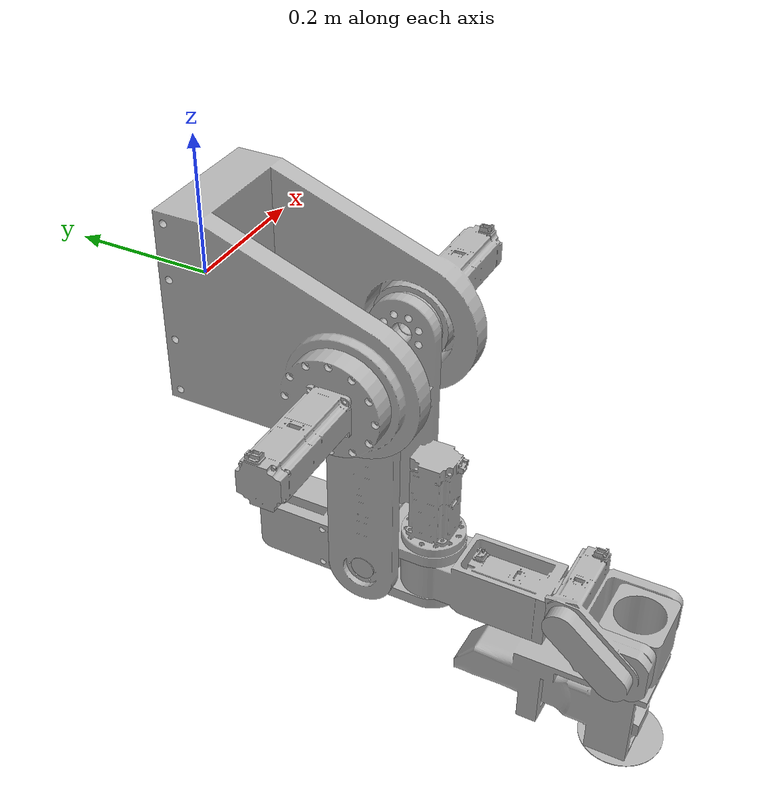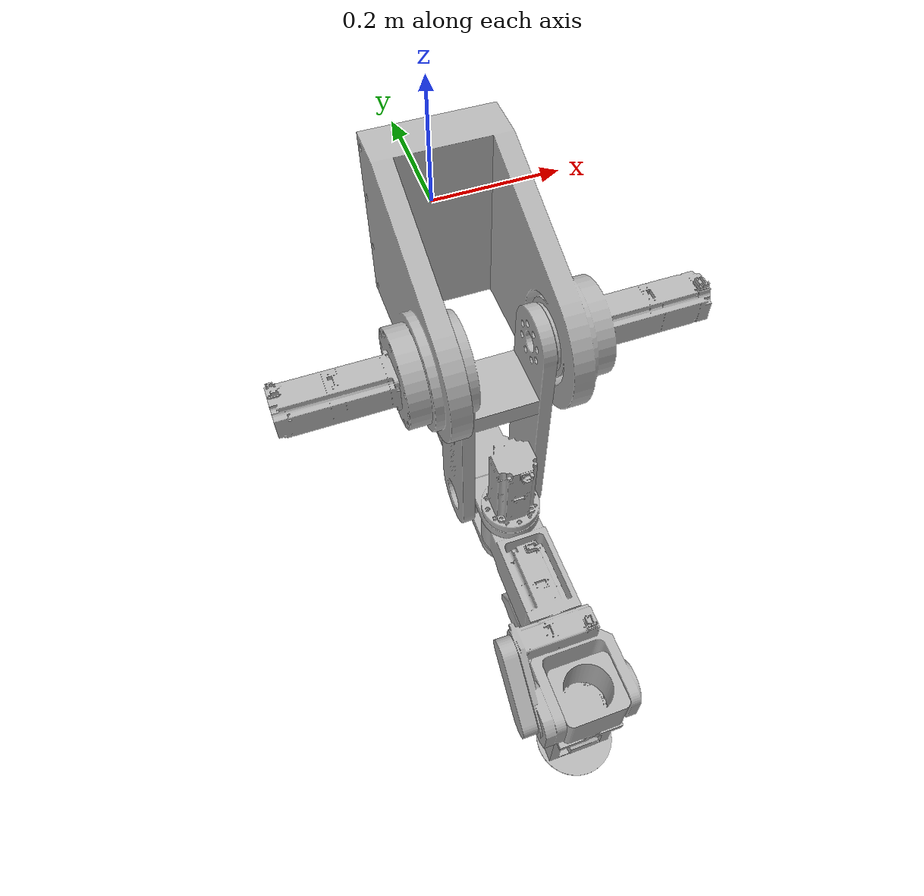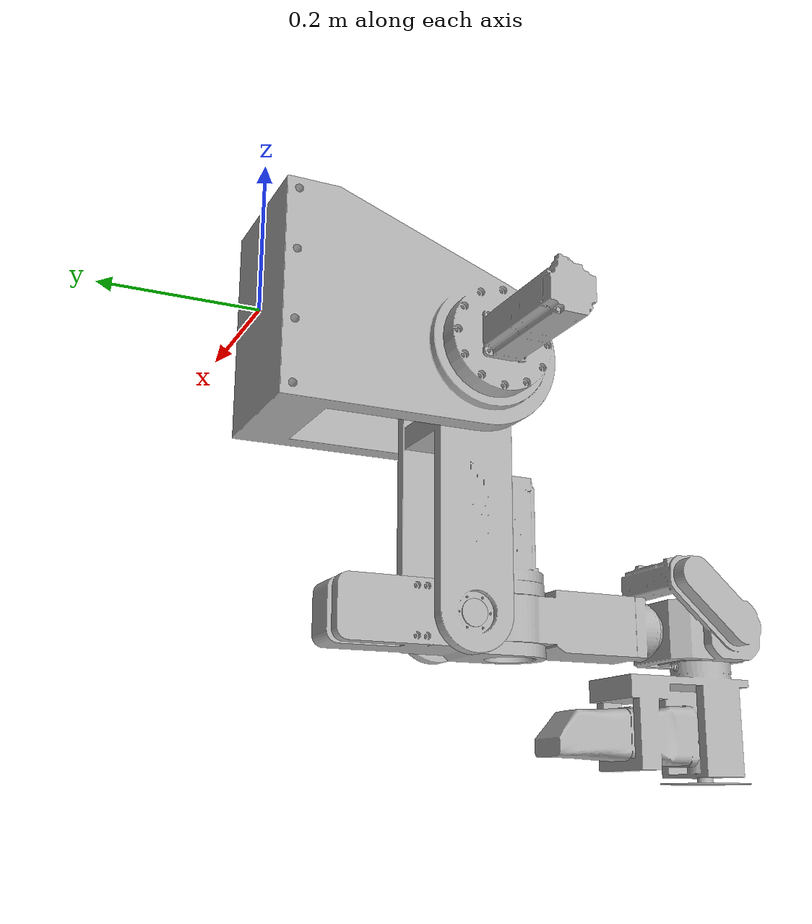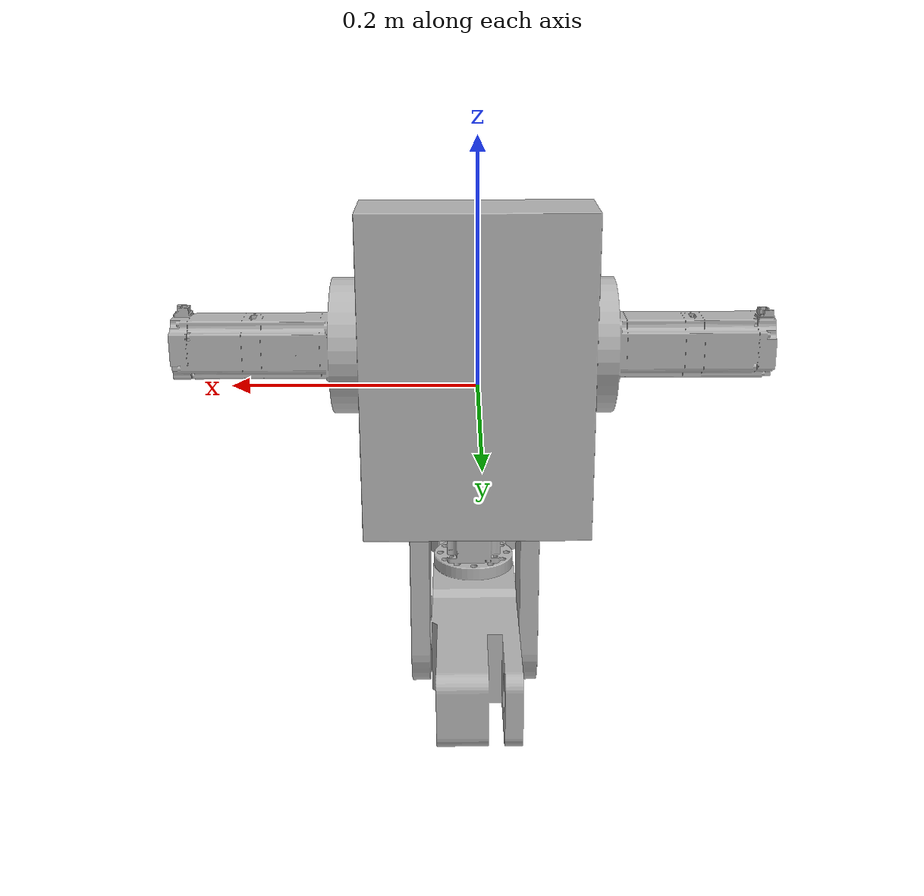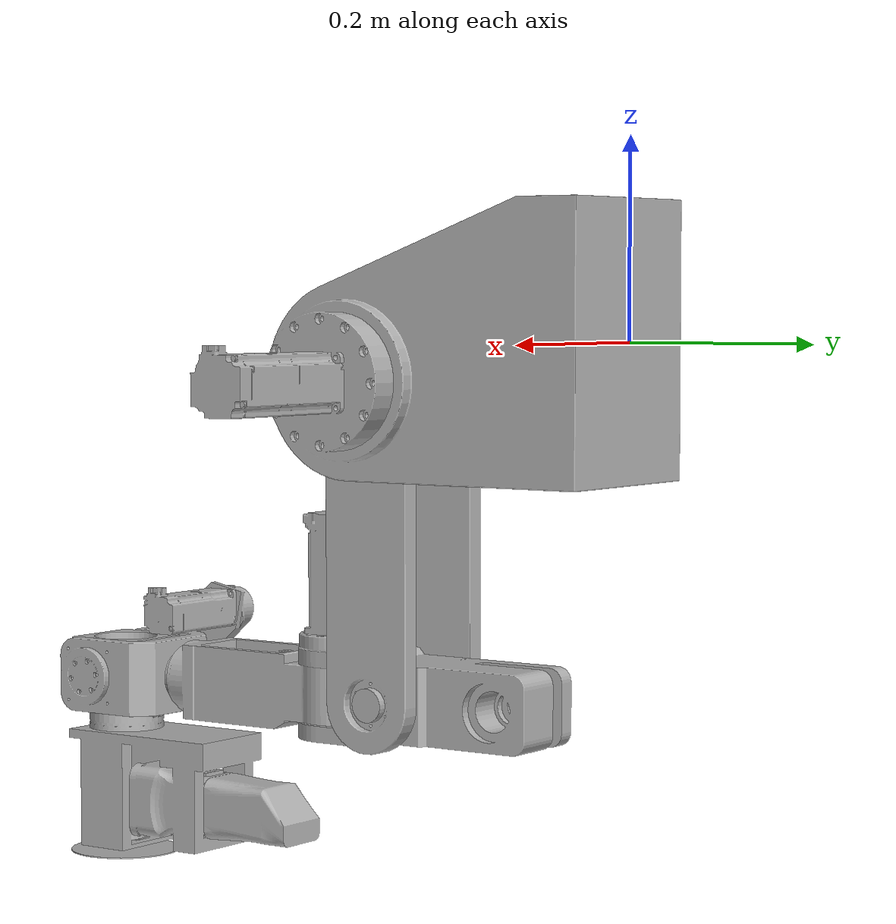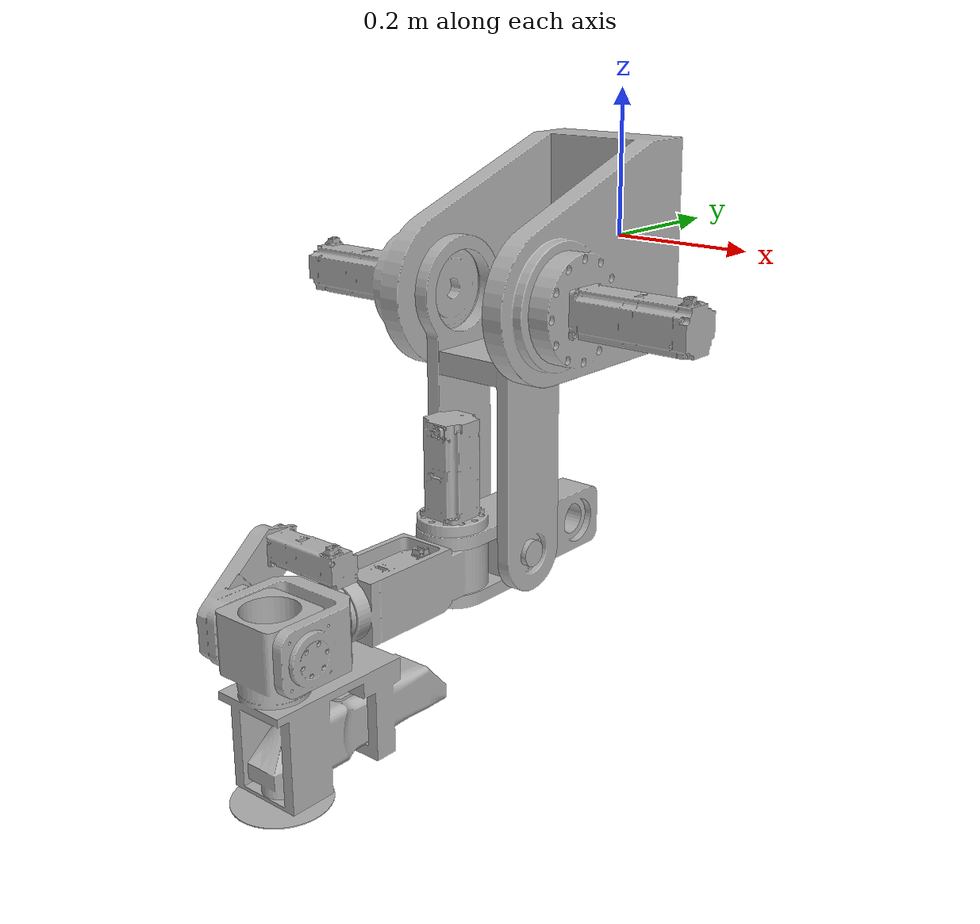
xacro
<?xml version="1.0" ?>
<robot name="manipulator_wheel" xmlns:xacro="http://www.ros.org/wiki/xacro">

<xacro:include filename="$(find manipulator_wheel_description)/urdf/materials.xacro" />
<xacro:include filename="$(find manipulator_wheel_description)/urdf/manipulator_wheel.trans" />
<xacro:include filename="$(find manipulator_wheel_description)/urdf/manipulator_wheel.gazebo" />
<link name="base_link">
  <inertial>
    <origin xyz="-0.022926233564164476 -0.15167370000685323 -0.05296974004025843" rpy="0 0 0"/>
    <mass value="76.1154222860437"/>
    <inertia ixx="1.295628" iyy="1.21986" izz="1.794207" ixy="-0.001778" iyz="-0.144288" ixz="-0.000193"/>
  </inertial>
  <visual>
    <origin xyz="0 0 0" rpy="0 0 0"/>
    <geometry>
      <mesh filename="package://manipulator_wheel_description/meshes/base_link.stl" scale="0.001 0.001 0.001"/>
    </geometry>
    <material name="silver"/>
  </visual>
  <collision>
    <origin xyz="0 0 0" rpy="0 0 0"/>
    <geometry>
      <mesh filename="package://manipulator_wheel_description/meshes/base_link.stl" scale="0.001 0.001 0.001"/>
    </geometry>
  </collision>
</link>

<link name="link_1_1">
  <inertial>
    <origin xyz="-0.0665838793626529 0.00018951907097419785 -0.15592397147705364" rpy="0 0 0"/>
    <mass value="13.56198472678475"/>
    <inertia ixx="0.174021" iyy="0.201032" izz="0.052132" ixy="1e-06" iyz="0.000182" ixz="-0.000954"/>
  </inertial>
  <visual>
    <origin xyz="-0.043929 0.27 0.075161" rpy="0 0 0"/>
    <geometry>
      <mesh filename="package://manipulator_wheel_description/meshes/link_1_1.stl" scale="0.001 0.001 0.001"/>
    </geometry>
    <material name="silver"/>
  </visual>
  <collision>
    <origin xyz="-0.043929 0.27 0.075161" rpy="0 0 0"/>
    <geometry>
      <mesh filename="package://manipulator_wheel_description/meshes/link_1_1.stl" scale="0.001 0.001 0.001"/>
    </geometry>
  </collision>
</link>

<link name="link_2_1">
  <inertial>
    <origin xyz="-0.06809929368163971 0.011545009334163414 0.028880101791727508" rpy="0 0 0"/>
    <mass value="14.98901864726029"/>
    <inertia ixx="0.147432" iyy="0.060352" izz="0.106188" ixy="0.000519" iyz="0.039686" ixz="-6.3e-05"/>
  </inertial>
  <visual>
    <origin xyz="-0.043929 0.269597 0.405161" rpy="0 0 0"/>
    <geometry>
      <mesh filename="package://manipulator_wheel_description/meshes/link_2_1.stl" scale="0.001 0.001 0.001"/>
    </geometry>
    <material name="silver"/>
  </visual>
  <collision>
    <origin xyz="-0.043929 0.269597 0.405161" rpy="0 0 0"/>
    <geometry>
      <mesh filename="package://manipulator_wheel_description/meshes/link_2_1.stl" scale="0.001 0.001 0.001"/>
    </geometry>
  </collision>
</link>

<link name="link_3_1">
  <inertial>
    <origin xyz="1.0447027681572546e-05 -0.09869607635588817 -0.033099829009288595" rpy="0 0 0"/>
    <mass value="8.318553158253737"/>
    <inertia ixx="0.041743" iyy="0.008031" izz="0.043189" ixy="-4e-06" iyz="0.000761" ixz="-4e-06"/>
  </inertial>
  <visual>
    <origin xyz="0.024071 0.349597 0.374661" rpy="0 0 0"/>
    <geometry>
      <mesh filename="package://manipulator_wheel_description/meshes/link_3_1.stl" scale="0.001 0.001 0.001"/>
    </geometry>
    <material name="silver"/>
  </visual>
  <collision>
    <origin xyz="0.024071 0.349597 0.374661" rpy="0 0 0"/>
    <geometry>
      <mesh filename="package://manipulator_wheel_description/meshes/link_3_1.stl" scale="0.001 0.001 0.001"/>
    </geometry>
  </collision>
</link>

<link name="link_4_1">
  <inertial>
    <origin xyz="-0.027200014024595785 -0.04184068486015846 0.022474329238523383" rpy="0 0 0"/>
    <mass value="6.3799372618247645"/>
    <inertia ixx="0.016749" iyy="0.026699" izz="0.027086" ixy="-0.000559" iyz="-0.003876" ixz="0.002353"/>
  </inertial>
  <visual>
    <origin xyz="0.024077 0.563097 0.404661" rpy="0 0 0"/>
    <geometry>
      <mesh filename="package://manipulator_wheel_description/meshes/link_4_1.stl" scale="0.001 0.001 0.001"/>
    </geometry>
    <material name="silver"/>
  </visual>
  <collision>
    <origin xyz="0.024077 0.563097 0.404661" rpy="0 0 0"/>
    <geometry>
      <mesh filename="package://manipulator_wheel_description/meshes/link_4_1.stl" scale="0.001 0.001 0.001"/>
    </geometry>
  </collision>
</link>

<link name="link_5_1">
  <inertial>
    <origin xyz="0.04870811402579993 0.07158062518210029 -0.10422729249502255" rpy="0 0 0"/>
    <mass value="16.57525103442224"/>
    <inertia ixx="0.14344" iyy="0.0654" izz="0.102348" ixy="-0.000885" iyz="0.029739" ixz="0.000823"/>
  </inertial>
  <visual>
    <origin xyz="0.072079 0.649596 0.404661" rpy="0 0 0"/>
    <geometry>
      <mesh filename="package://manipulator_wheel_description/meshes/link_5_1.stl" scale="0.001 0.001 0.001"/>
    </geometry>
    <material name="silver"/>
  </visual>
  <collision>
    <origin xyz="0.072079 0.649596 0.404661" rpy="0 0 0"/>
    <geometry>
      <mesh filename="package://manipulator_wheel_description/meshes/link_5_1.stl" scale="0.001 0.001 0.001"/>
    </geometry>
  </collision>
</link>

<link name="tcp_1">
  <inertial>
    <origin xyz="-4.204320017894836e-07 -1.4896289834975818e-07 0.0005999834596194242" rpy="0 0 0"/>
    <mass value="0.10295683993012651"/>
    <inertia ixx="9.6e-05" iyy="9.6e-05" izz="0.000192" ixy="-0.0" iyz="0.0" ixz="0.0"/>
  </inertial>
  <visual>
    <origin xyz="0.021738 0.649258 0.604661" rpy="0 0 0"/>
    <geometry>
      <mesh filename="package://manipulator_wheel_description/meshes/tcp_1.stl" scale="0.001 0.001 0.001"/>
    </geometry>
    <material name="silver"/>
  </visual>
  <collision>
    <origin xyz="0.021738 0.649258 0.604661" rpy="0 0 0"/>
    <geometry>
      <mesh filename="package://manipulator_wheel_description/meshes/tcp_1.stl" scale="0.001 0.001 0.001"/>
    </geometry>
  </collision>
</link>

<joint name="Rev1" type="continuous">
  <origin xyz="0.043929 -0.27 -0.075161" rpy="0 0 0"/>
  <parent link="base_link"/>
  <child link="link_1_1"/>
  <axis xyz="-1.0 0.0 0.0"/>
</joint>

<joint name="Rev6" type="continuous">
  <origin xyz="0.0 0.000403 -0.33" rpy="0 0 0"/>
  <parent link="link_1_1"/>
  <child link="link_2_1"/>
  <axis xyz="1.0 -0.0 -0.0"/>
</joint>

<joint name="Rev8" type="continuous">
  <origin xyz="-0.068 -0.08 0.0305" rpy="0 0 0"/>
  <parent link="link_2_1"/>
  <child link="link_3_1"/>
  <axis xyz="-0.0 -0.0 -1.0"/>
</joint>

<joint name="Rev9" type="continuous">
  <origin xyz="-6e-06 -0.2135 -0.03" rpy="0 0 0"/>
  <parent link="link_3_1"/>
  <child link="link_4_1"/>
  <axis xyz="-2.9e-05 -1.0 0.0"/>
</joint>

<joint name="Rev14" type="continuous">
  <origin xyz="-0.048002 -0.086499 0.0" rpy="0 0 0"/>
  <parent link="link_4_1"/>
  <child link="link_5_1"/>
  <axis xyz="1.0 -2.9e-05 0.0"/>
</joint>

<joint name="Rev15" type="continuous">
  <origin xyz="0.050341 0.000338 -0.2" rpy="0 0 0"/>
  <parent link="link_5_1"/>
  <child link="tcp_1"/>
  <axis xyz="-0.0 -0.0 -1.0"/>
</joint>

</robot>

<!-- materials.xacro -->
<robot name="manipulator_wheel" xmlns:xacro="http://www.ros.org/wiki/xacro" >

<material name="silver">
  <color rgba="0.700 0.700 0.700 1.000"/>
</material>

</robot>

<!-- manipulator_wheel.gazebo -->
<robot name="manipulator_wheel" xmlns:xacro="http://www.ros.org/wiki/xacro" >

<xacro:property name="body_color" value="Gazebo/Silver" />

<gazebo>
  <plugin name="control" filename="libgazebo_ros_control.so"/>
</gazebo>
<gazebo reference="base_link">
  <material>${body_color}</material>
  <mu1>0.2</mu1>
  <mu2>0.2</mu2>
  <selfCollide>true</selfCollide>
  <gravity>true</gravity>
</gazebo>

<gazebo reference="link_1_1">
  <material>${body_color}</material>
  <mu1>0.2</mu1>
  <mu2>0.2</mu2>
  <selfCollide>true</selfCollide>
</gazebo>

<gazebo reference="link_2_1">
  <material>${body_color}</material>
  <mu1>0.2</mu1>
  <mu2>0.2</mu2>
  <selfCollide>true</selfCollide>
</gazebo>

<gazebo reference="link_3_1">
  <material>${body_color}</material>
  <mu1>0.2</mu1>
  <mu2>0.2</mu2>
  <selfCollide>true</selfCollide>
</gazebo>

<gazebo reference="link_4_1">
  <material>${body_color}</material>
  <mu1>0.2</mu1>
  <mu2>0.2</mu2>
  <selfCollide>true</selfCollide>
</gazebo>

<gazebo reference="link_5_1">
  <material>${body_color}</material>
  <mu1>0.2</mu1>
  <mu2>0.2</mu2>
  <selfCollide>true</selfCollide>
</gazebo>

<gazebo reference="tcp_1">
  <material>${body_color}</material>
  <mu1>0.2</mu1>
  <mu2>0.2</mu2>
  <selfCollide>true</selfCollide>
</gazebo>

</robot>
